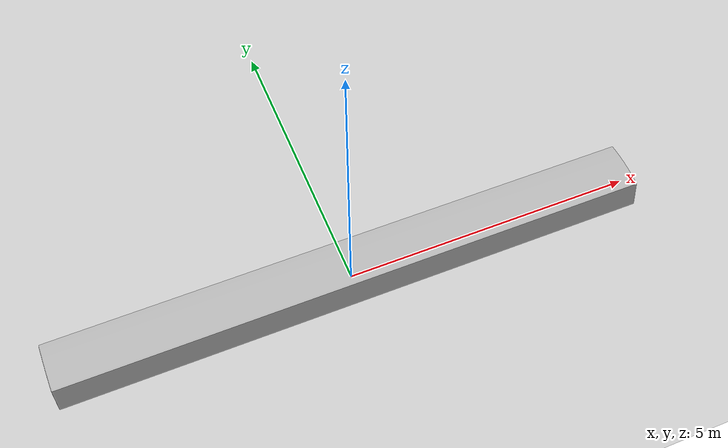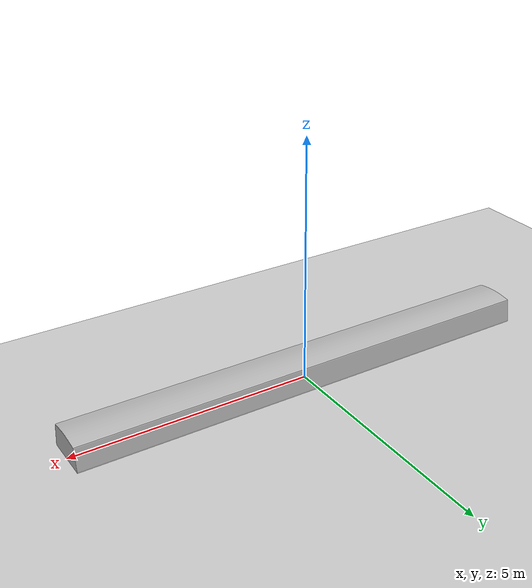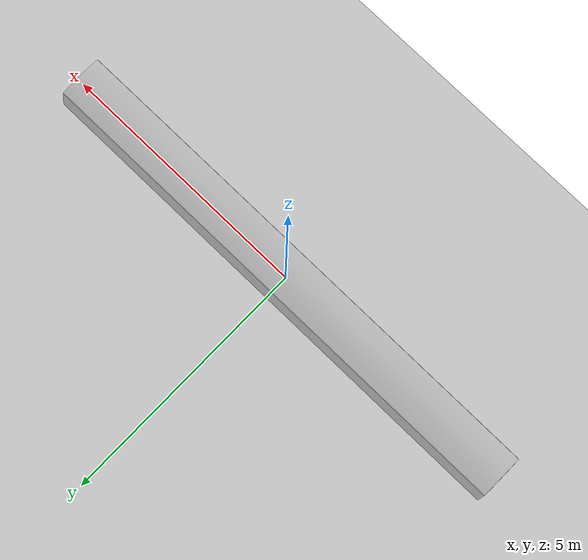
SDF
<?xml version="1.0"?>
<sdf version="1.6">
  <world name="check_bed">
    <include><uri>model://sun</uri></include>
    <include><uri>model://ground_plane</uri></include>
    <include><uri>model://bed</uri><pose>0 0 0 0 0 0</pose></include>
    <gui>
      <camera name="user_camera">
        <pose>-7.0 -6.0 3.5 0 0.40 0.6</pose>
      </camera>
    </gui>
  </world>
</sdf>

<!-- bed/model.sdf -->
<sdf version="1.6">
  <model name="bed">
    <static>true</static>
    <link name="link">
      <visual name="visual">
        <pose>0 0 0 1.5708 0 0</pose>
        <geometry><mesh><uri>model://bed/meshes/bed.obj</uri></mesh></geometry>
      </visual>
      <collision name="collision">
        <pose>0 0 0.20 0 0 0</pose>
        <geometry><box><size>10 1.0 0.4</size></box></geometry>
      </collision>
    </link>
  </model>
</sdf>
